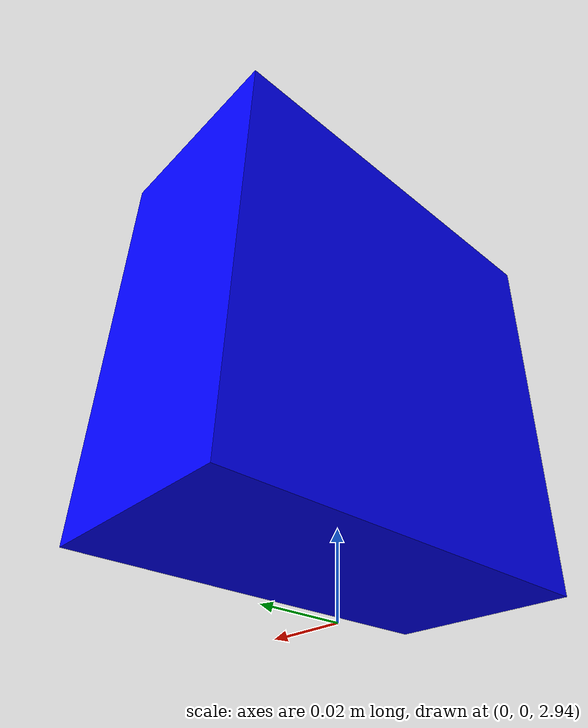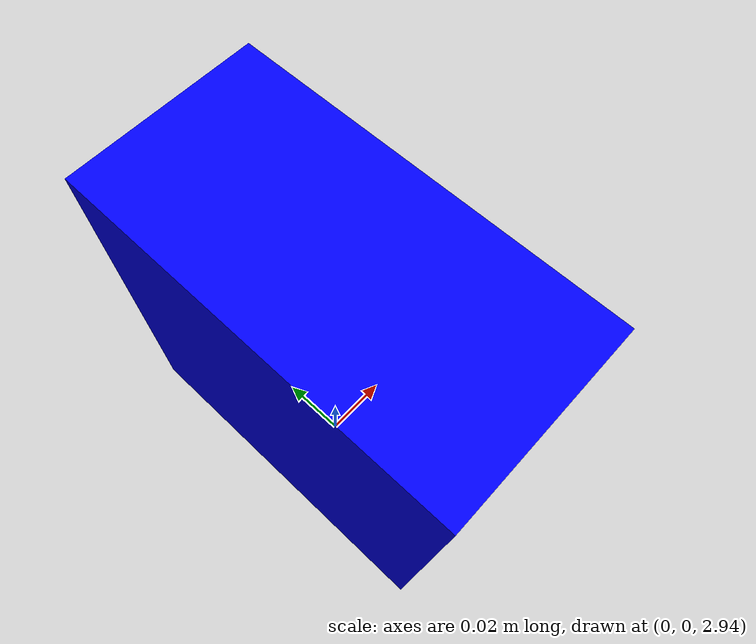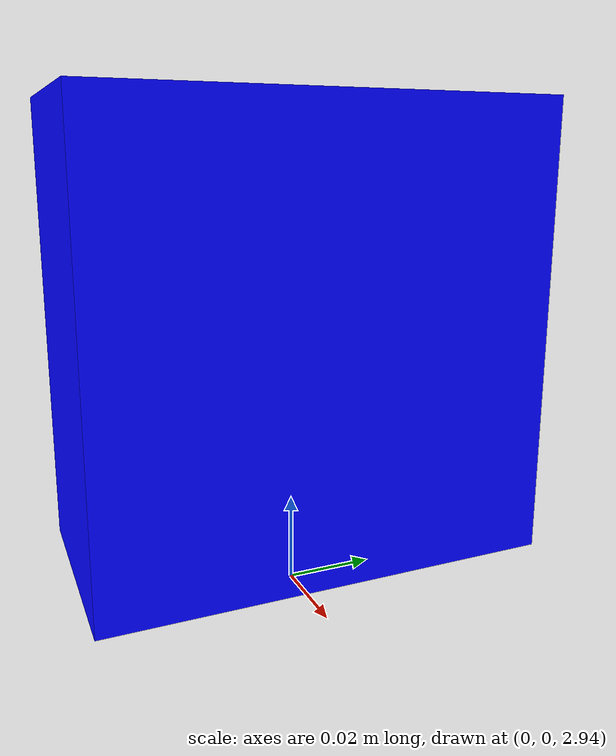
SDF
<?xml version="1.0" ?>
<sdf version="1.9">
  <model name="world_depth_camera">

    <!-- Camera placed 3 meters above ground -->
    <pose>0 0 3 0 -1.5708 0</pose>

    <static>true</static>

    <link name="camera_link">

      <!-- Inertial (required for proper physics engine stability) -->
      <inertial>
        <mass>0.1</mass>
        <inertia>
          <ixx>0.0001</ixx>
          <iyy>0.0001</iyy>
          <izz>0.0001</izz>
          <ixy>0</ixy>
          <ixz>0</ixz>
          <iyz>0</iyz>
        </inertia>
      </inertial>

      <!-- Visual (so you can see camera body) -->
      <visual name="camera_visual">
        <geometry>
          <box>
            <size>0.1 0.1 0.05</size>
          </box>
        </geometry>
        <material>
          <ambient>0 0 1 1</ambient>
          <diffuse>0 0 1 1</diffuse>
        </material>
      </visual>

      <!-- Collision (not necessary but good practice) -->
      <collision name="camera_collision">
        <geometry>
          <box>
            <size>0.1 0.1 0.05</size>
          </box>
        </geometry>
      </collision>

      <!-- Depth Camera Sensor -->
      <sensor name="depth_camera" type="depth">

        <update_rate>30</update_rate>

        <camera>
          <horizontal_fov>1.396</horizontal_fov>

          <image>
            <width>640</width>
            <height>480</height>
            <format>R8G8B8</format>
          </image>

          <clip>
            <near>0.1</near>
            <far>10.0</far>
          </clip>
        </camera>

        <always_on>true</always_on>
        <visualize>true</visualize>

      </sensor>

    </link>

  </model>
</sdf>
